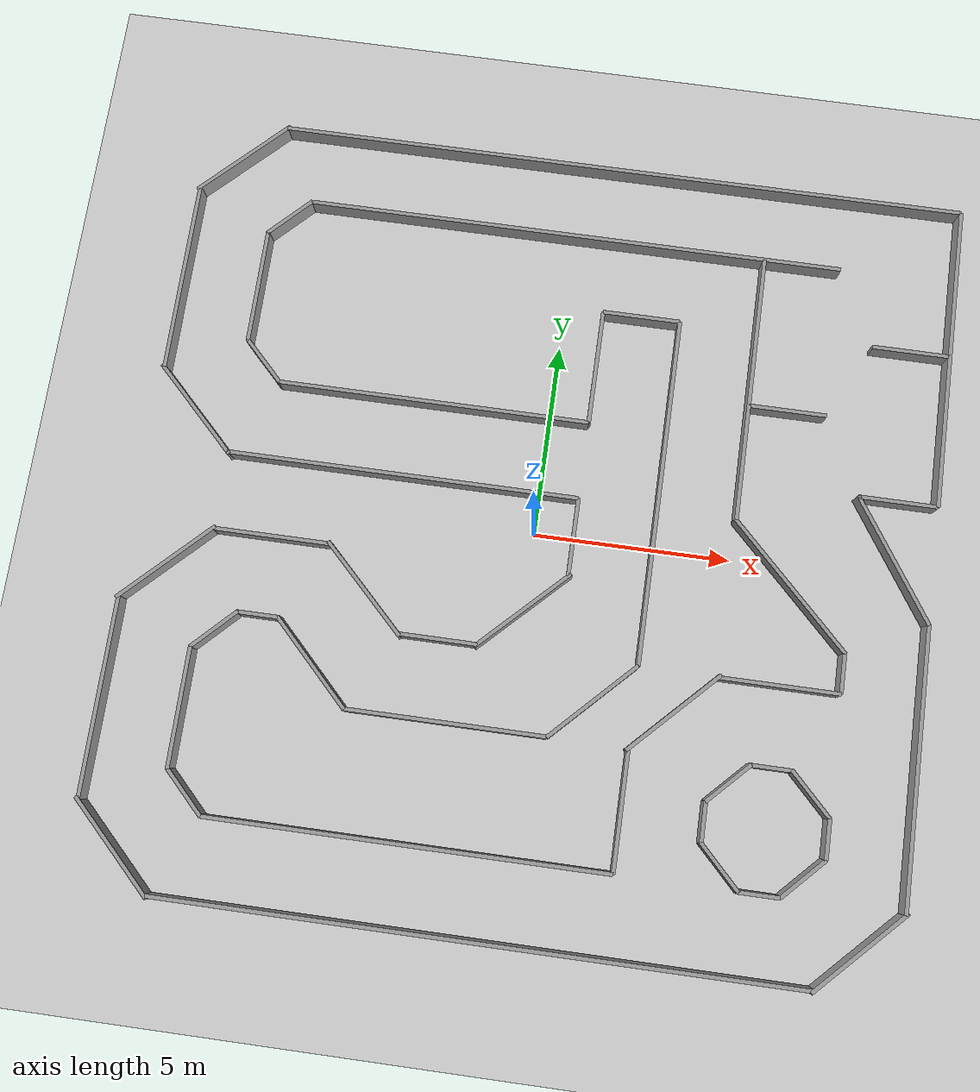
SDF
<sdf version="1.4">
 <world name="default">
  <light name="sun" type="directional">
   <pose>0 0 10 0 -0 0</pose>
   <diffuse>0.8 0.8 0.8 1</diffuse>
   <specular>0.2 0.2 0.2 1</specular>
   <attenuation>
    <range>1000</range>
    <constant>0.9</constant>
    <linear>0.01</linear>
    <quadratic>0.001</quadratic>
   </attenuation>
   <direction>-0.5 0.1 -0.9</direction>
  </light>
  <model name="ground_plane">
   <static>1</static>
   <link name="link">
    <collision name="collision">
     <geometry><plane><normal>0 0 1</normal><size>100 100</size></plane></geometry>
     <surface><friction><ode><mu>100000</mu><mu2>100000</mu2></ode></friction></surface>
    </collision>
    <visual name="visual">
     <cast_shadows>0</cast_shadows>
     <geometry><plane><normal>0 0 1</normal><size>100 100</size></plane></geometry>
     <material>
      <script><uri>file://media/materials/scripts/gazebo.material</uri><name>Gazebo/Grey</name></script>
     </material>
    </visual>
    <velocity_decay><linear>0</linear><angular>0</angular></velocity_decay>
   </link>
  </model>
  <physics type="ode">
   <max_step_size>0.01</max_step_size>
   <real_time_factor>1</real_time_factor>
   <real_time_update_rate>100</real_time_update_rate>
   <gravity>0 0 -9.8</gravity>
  </physics>
  <scene><ambient>0.4 0.4 0.4 1</ambient><background>0.7 0.7 0.7 1</background><shadows>1</shadows></scene>
  <model name="unit_box_1">
   <pose>-9 -2 0 0 0 0.78</pose>
   <link name="link">
    <inertial>
     <mass>1</mass>
     <inertia><ixx>0</ixx><ixy>0</ixy><ixz>0</ixz><iyy>0</iyy><iyz>0</iyz><izz>0</izz></inertia>
    </inertial>
    <collision name="collision"><geometry><box><size>3 0.1 1</size></box></geometry></collision>
    <visual name="visual">
     <geometry><box><size>3 0.1 1</size></box></geometry>
     <material>
      <script><uri>file://media/materials/scripts/gazebo.material</uri><name>Gazebo/Grey</name></script>
     </material>
    </visual>
    <velocity_decay><linear>0</linear><angular>0</angular></velocity_decay>
   </link>
   <static>1</static>
  </model>
  <model name="unit_box_2">
   <pose>-10 -5.5 0 0 0 0</pose>
   <link name="link">
    <inertial>
     <mass>1</mass>
     <inertia><ixx>0</ixx><ixy>0</ixy><ixz>0</ixz><iyy>0</iyy><iyz>0</iyz><izz>0</izz></inertia>
    </inertial>
    <collision name="collision"><geometry><box><size>0.1 5 1</size></box></geometry></collision>
    <visual name="visual">
     <geometry><box><size>0.1 5 1</size></box></geometry>
     <material>
      <script><uri>file://media/materials/scripts/gazebo.material</uri><name>Gazebo/Grey</name></script>
     </material>
    </visual>
    <velocity_decay><linear>0</linear><angular>0</angular></velocity_decay>
   </link>
   <static>1</static>
  </model>
  <model name="unit_box_3">
   <pose>-9 -9 0 0 0 -0.78</pose>
   <link name="link">
    <inertial>
     <mass>1</mass>
     <inertia><ixx>0</ixx><ixy>0</ixy><ixz>0</ixz><iyy>0</iyy><iyz>0</iyz><izz>0</izz></inertia>
    </inertial>
    <collision name="collision"><geometry><box><size>3 0.1 1</size></box></geometry></collision>
    <visual name="visual">
     <geometry><box><size>3 0.1 1</size></box></geometry>
     <material>
      <script><uri>file://media/materials/scripts/gazebo.material</uri><name>Gazebo/Grey</name></script>
     </material>
    </visual>
    <velocity_decay><linear>0</linear><angular>0</angular></velocity_decay>
   </link>
   <static>1</static>
  </model>
  <model name="unit_box_4">
   <pose>0 -10 0 0 0 0</pose>
   <link name="link">
    <inertial>
     <mass>1</mass>
     <inertia><ixx>0</ixx><ixy>0</ixy><ixz>0</ixz><iyy>0</iyy><iyz>0</iyz><izz>0</izz></inertia>
    </inertial>
    <collision name="collision"><geometry><box><size>16 0.1 1</size></box></geometry></collision>
    <visual name="visual">
     <geometry><box><size>16 0.1 1</size></box></geometry>
     <material>
      <script><uri>file://media/materials/scripts/gazebo.material</uri><name>Gazebo/Grey</name></script>
     </material>
    </visual>
    <velocity_decay><linear>0</linear><angular>0</angular></velocity_decay>
   </link>
   <static>1</static>
  </model>
  <model name="unit_box_5">
   <pose>-2 -8 0 0 0 0</pose>
   <link name="link">
    <inertial>
     <mass>1</mass>
     <inertia><ixx>0</ixx><ixy>0</ixy><ixz>0</ixz><iyy>0</iyy><iyz>0</iyz><izz>0</izz></inertia>
    </inertial>
    <collision name="collision"><geometry><box><size>10 0.1 1</size></box></geometry></collision>
    <visual name="visual">
     <geometry><box><size>10 0.1 1</size></box></geometry>
     <material>
      <script><uri>file://media/materials/scripts/gazebo.material</uri><name>Gazebo/Grey</name></script>
     </material>
    </visual>
    <velocity_decay><linear>0</linear><angular>0</angular></velocity_decay>
   </link>
   <static>1</static>
  </model>
  <model name="unit_box_6">
   <pose>9 -9 0 0 0 0.78</pose>
   <link name="link">
    <inertial>
     <mass>1</mass>
     <inertia><ixx>0</ixx><ixy>0</ixy><ixz>0</ixz><iyy>0</iyy><iyz>0</iyz><izz>0</izz></inertia>
    </inertial>
    <collision name="collision"><geometry><box><size>3 0.1 1</size></box></geometry></collision>
    <visual name="visual">
     <geometry><box><size>3 0.1 1</size></box></geometry>
     <material>
      <script><uri>file://media/materials/scripts/gazebo.material</uri><name>Gazebo/Grey</name></script>
     </material>
    </visual>
    <velocity_decay><linear>0</linear><angular>0</angular></velocity_decay>
   </link>
   <static>1</static>
  </model>
  <model name="unit_box_7">
   <pose>3 -6.5 0 0 0 0</pose>
   <link name="link">
    <inertial>
     <mass>1</mass>
     <inertia><ixx>0</ixx><ixy>0</ixy><ixz>0</ixz><iyy>0</iyy><iyz>0</iyz><izz>0</izz></inertia>
    </inertial>
    <collision name="collision"><geometry><box><size>0.1 3 1</size></box></geometry></collision>
    <visual name="visual">
     <geometry><box><size>0.1 3 1</size></box></geometry>
     <material>
      <script><uri>file://media/materials/scripts/gazebo.material</uri><name>Gazebo/Grey</name></script>
     </material>
    </visual>
    <velocity_decay><linear>0</linear><angular>0</angular></velocity_decay>
   </link>
   <static>1</static>
  </model>
  <model name="unit_box_8">
   <pose>5 -6.5 0 0 0 0</pose>
   <link name="link">
    <inertial>
     <mass>1</mass>
     <inertia><ixx>0</ixx><ixy>0</ixy><ixz>0</ixz><iyy>0</iyy><iyz>0</iyz><izz>0</izz></inertia>
    </inertial>
    <collision name="collision"><geometry><box><size>0.1 1 1</size></box></geometry></collision>
    <visual name="visual">
     <geometry><box><size>0.1 1 1</size></box></geometry>
     <material>
      <script><uri>file://media/materials/scripts/gazebo.material</uri><name>Gazebo/Grey</name></script>
     </material>
    </visual>
    <velocity_decay><linear>0</linear><angular>0</angular></velocity_decay>
   </link>
   <static>1</static>
  </model>
  <model name="unit_box_9">
   <pose>8 -6.5 0 0 0 0</pose>
   <link name="link">
    <inertial>
     <mass>1</mass>
     <inertia><ixx>0</ixx><ixy>0</ixy><ixz>0</ixz><iyy>0</iyy><iyz>0</iyz><izz>0</izz></inertia>
    </inertial>
    <collision name="collision"><geometry><box><size>0.1 1 1</size></box></geometry></collision>
    <visual name="visual">
     <geometry><box><size>0.1 1 1</size></box></geometry>
     <material>
      <script><uri>file://media/materials/scripts/gazebo.material</uri><name>Gazebo/Grey</name></script>
     </material>
    </visual>
    <velocity_decay><linear>0</linear><angular>0</angular></velocity_decay>
   </link>
   <static>1</static>
  </model>
  <model name="unit_box_10">
   <pose>7.5 -7.5 0 0 0 -0.78</pose>
   <link name="link">
    <inertial>
     <mass>1</mass>
     <inertia><ixx>0</ixx><ixy>0</ixy><ixz>0</ixz><iyy>0</iyy><iyz>0</iyz><izz>0</izz></inertia>
    </inertial>
    <collision name="collision"><geometry><box><size>0.1 1.45 1</size></box></geometry></collision>
    <visual name="visual">
     <geometry><box><size>0.1 1.45 1</size></box></geometry>
     <material>
      <script><uri>file://media/materials/scripts/gazebo.material</uri><name>Gazebo/Grey</name></script>
     </material>
    </visual>
    <velocity_decay><linear>0</linear><angular>0</angular></velocity_decay>
   </link>
   <static>1</static>
  </model>
  <model name="unit_box_11">
   <pose>6.5 -8 0 0 0 0</pose>
   <link name="link">
    <inertial>
     <mass>1</mass>
     <inertia><ixx>0</ixx><ixy>0</ixy><ixz>0</ixz><iyy>0</iyy><iyz>0</iyz><izz>0</izz></inertia>
    </inertial>
    <collision name="collision"><geometry><box><size>1 0.1 1</size></box></geometry></collision>
    <visual name="visual">
     <geometry><box><size>1 0.1 1</size></box></geometry>
     <material>
      <script><uri>file://media/materials/scripts/gazebo.material</uri><name>Gazebo/Grey</name></script>
     </material>
    </visual>
    <velocity_decay><linear>0</linear><angular>0</angular></velocity_decay>
   </link>
   <static>1</static>
  </model>
  <model name="unit_box_12">
   <pose>5.5 -7.5 0 0 0 0.78</pose>
   <link name="link">
    <inertial>
     <mass>1</mass>
     <inertia><ixx>0</ixx><ixy>0</ixy><ixz>0</ixz><iyy>0</iyy><iyz>0</iyz><izz>0</izz></inertia>
    </inertial>
    <collision name="collision"><geometry><box><size>0.1 1.45 1</size></box></geometry></collision>
    <visual name="visual">
     <geometry><box><size>0.1 1.45 1</size></box></geometry>
     <material>
      <script><uri>file://media/materials/scripts/gazebo.material</uri><name>Gazebo/Grey</name></script>
     </material>
    </visual>
    <velocity_decay><linear>0</linear><angular>0</angular></velocity_decay>
   </link>
   <static>1</static>
  </model>
  <model name="unit_box_13">
   <pose>5.5 -5.5 0 0 0 -0.78</pose>
   <link name="link">
    <inertial>
     <mass>1</mass>
     <inertia><ixx>0</ixx><ixy>0</ixy><ixz>0</ixz><iyy>0</iyy><iyz>0</iyz><izz>0</izz></inertia>
    </inertial>
    <collision name="collision"><geometry><box><size>0.1 1.45 1</size></box></geometry></collision>
    <visual name="visual">
     <geometry><box><size>0.1 1.45 1</size></box></geometry>
     <material>
      <script><uri>file://media/materials/scripts/gazebo.material</uri><name>Gazebo/Grey</name></script>
     </material>
    </visual>
    <velocity_decay><linear>0</linear><angular>0</angular></velocity_decay>
   </link>
   <static>1</static>
  </model>
  <model name="unit_box_14">
   <pose>7.5 -5.5 0 0 0 0.78</pose>
   <link name="link">
    <inertial>
     <mass>1</mass>
     <inertia><ixx>0</ixx><ixy>0</ixy><ixz>0</ixz><iyy>0</iyy><iyz>0</iyz><izz>0</izz></inertia>
    </inertial>
    <collision name="collision"><geometry><box><size>0.1 1.45 1</size></box></geometry></collision>
    <visual name="visual">
     <geometry><box><size>0.1 1.45 1</size></box></geometry>
     <material>
      <script><uri>file://media/materials/scripts/gazebo.material</uri><name>Gazebo/Grey</name></script>
     </material>
    </visual>
    <velocity_decay><linear>0</linear><angular>0</angular></velocity_decay>
   </link>
   <static>1</static>
  </model>
  <model name="unit_box_15">
   <pose>6.5 -5 0 0 0 0</pose>
   <link name="link">
    <inertial>
     <mass>1</mass>
     <inertia><ixx>0</ixx><ixy>0</ixy><ixz>0</ixz><iyy>0</iyy><iyz>0</iyz><izz>0</izz></inertia>
    </inertial>
    <collision name="collision"><geometry><box><size>1 0.1 1</size></box></geometry></collision>
    <visual name="visual">
     <geometry><box><size>1 0.1 1</size></box></geometry>
     <material>
      <script><uri>file://media/materials/scripts/gazebo.material</uri><name>Gazebo/Grey</name></script>
     </material>
    </visual>
    <velocity_decay><linear>0</linear><angular>0</angular></velocity_decay>
   </link>
   <static>1</static>
  </model>
  <model name="unit_box_16">
   <pose>4 -4 0 0 0 -0.78</pose>
   <link name="link">
    <inertial>
     <mass>1</mass>
     <inertia><ixx>0</ixx><ixy>0</ixy><ixz>0</ixz><iyy>0</iyy><iyz>0</iyz><izz>0</izz></inertia>
    </inertial>
    <collision name="collision"><geometry><box><size>0.1 3 1</size></box></geometry></collision>
    <visual name="visual">
     <geometry><box><size>0.1 3 1</size></box></geometry>
     <material>
      <script><uri>file://media/materials/scripts/gazebo.material</uri><name>Gazebo/Grey</name></script>
     </material>
    </visual>
    <velocity_decay><linear>0</linear><angular>0</angular></velocity_decay>
   </link>
   <static>1</static>
  </model>
  <model name="unit_box_17">
   <pose>10 -4.5 0 0 0 0</pose>
   <link name="link">
    <inertial>
     <mass>1</mass>
     <inertia><ixx>0</ixx><ixy>0</ixy><ixz>0</ixz><iyy>0</iyy><iyz>0</iyz><izz>0</izz></inertia>
    </inertial>
    <collision name="collision"><geometry><box><size>0.1 7 1</size></box></geometry></collision>
    <visual name="visual">
     <geometry><box><size>0.1 7 1</size></box></geometry>
     <material>
      <script><uri>file://media/materials/scripts/gazebo.material</uri><name>Gazebo/Grey</name></script>
     </material>
    </visual>
    <velocity_decay><linear>0</linear><angular>0</angular></velocity_decay>
   </link>
   <static>1</static>
  </model>
  <model name="unit_box_18">
   <pose>6.5 -3 0 0 0 0</pose>
   <link name="link">
    <inertial>
     <mass>1</mass>
     <inertia><ixx>0</ixx><ixy>0</ixy><ixz>0</ixz><iyy>0</iyy><iyz>0</iyz><izz>0</izz></inertia>
    </inertial>
    <collision name="collision"><geometry><box><size>3 0.1 1</size></box></geometry></collision>
    <visual name="visual">
     <geometry><box><size>3 0.1 1</size></box></geometry>
     <material>
      <script><uri>file://media/materials/scripts/gazebo.material</uri><name>Gazebo/Grey</name></script>
     </material>
    </visual>
    <velocity_decay><linear>0</linear><angular>0</angular></velocity_decay>
   </link>
   <static>1</static>
  </model>
  <model name="unit_box_19">
   <pose>1 10 0 0 0 0</pose>
   <link name="link">
    <inertial>
     <mass>1</mass>
     <inertia><ixx>0</ixx><ixy>0</ixy><ixz>0</ixz><iyy>0</iyy><iyz>0</iyz><izz>0</izz></inertia>
    </inertial>
    <collision name="collision"><geometry><box><size>18 0.1 1</size></box></geometry></collision>
    <visual name="visual">
     <geometry><box><size>18 0.1 1</size></box></geometry>
     <material>
      <script><uri>file://media/materials/scripts/gazebo.material</uri><name>Gazebo/Grey</name></script>
     </material>
    </visual>
    <velocity_decay><linear>0</linear><angular>0</angular></velocity_decay>
   </link>
   <static>1</static>
  </model>
  <model name="unit_box_20">
   <pose>10 6 0 0 0 0</pose>
   <link name="link">
    <inertial>
     <mass>1</mass>
     <inertia><ixx>0</ixx><ixy>0</ixy><ixz>0</ixz><iyy>0</iyy><iyz>0</iyz><izz>0</izz></inertia>
    </inertial>
    <collision name="collision"><geometry><box><size>0.1 8 1</size></box></geometry></collision>
    <visual name="visual">
     <geometry><box><size>0.1 8 1</size></box></geometry>
     <material>
      <script><uri>file://media/materials/scripts/gazebo.material</uri><name>Gazebo/Grey</name></script>
     </material>
    </visual>
    <velocity_decay><linear>0</linear><angular>0</angular></velocity_decay>
   </link>
   <static>1</static>
  </model>
  <model name="unit_box_21">
   <pose>5 4.5 0 0 0 0</pose>
   <link name="link">
    <inertial>
     <mass>1</mass>
     <inertia><ixx>0</ixx><ixy>0</ixy><ixz>0</ixz><iyy>0</iyy><iyz>0</iyz><izz>0</izz></inertia>
    </inertial>
    <collision name="collision"><geometry><box><size>0.1 7 1</size></box></geometry></collision>
    <visual name="visual">
     <geometry><box><size>0.1 7 1</size></box></geometry>
     <material>
      <script><uri>file://media/materials/scripts/gazebo.material</uri><name>Gazebo/Grey</name></script>
     </material>
    </visual>
    <velocity_decay><linear>0</linear><angular>0</angular></velocity_decay>
   </link>
   <static>1</static>
  </model>
  <model name="unit_box_22">
   <pose>0 8 0 0 0 0</pose>
   <link name="link">
    <inertial>
     <mass>1</mass>
     <inertia><ixx>0</ixx><ixy>0</ixy><ixz>0</ixz><iyy>0</iyy><iyz>0</iyz><izz>0</izz></inertia>
    </inertial>
    <collision name="collision"><geometry><box><size>14 0.1 1</size></box></geometry></collision>
    <visual name="visual">
     <geometry><box><size>14 0.1 1</size></box></geometry>
     <material>
      <script><uri>file://media/materials/scripts/gazebo.material</uri><name>Gazebo/Grey</name></script>
     </material>
    </visual>
    <velocity_decay><linear>0</linear><angular>0</angular></velocity_decay>
   </link>
   <static>1</static>
  </model>
  <model name="unit_box_23">
   <pose>9 2 0 0 0 0</pose>
   <link name="link">
    <inertial>
     <mass>1</mass>
     <inertia><ixx>0</ixx><ixy>0</ixy><ixz>0</ixz><iyy>0</iyy><iyz>0</iyz><izz>0</izz></inertia>
    </inertial>
    <collision name="collision"><geometry><box><size>2 0.1 1</size></box></geometry></collision>
    <visual name="visual">
     <geometry><box><size>2 0.1 1</size></box></geometry>
     <material>
      <script><uri>file://media/materials/scripts/gazebo.material</uri><name>Gazebo/Grey</name></script>
     </material>
    </visual>
    <velocity_decay><linear>0</linear><angular>0</angular></velocity_decay>
   </link>
   <static>1</static>
  </model>
  <model name="unit_box_24">
   <pose>9 6 0 0 0 0</pose>
   <link name="link">
    <inertial>
     <mass>1</mass>
     <inertia><ixx>0</ixx><ixy>0</ixy><ixz>0</ixz><iyy>0</iyy><iyz>0</iyz><izz>0</izz></inertia>
    </inertial>
    <collision name="collision"><geometry><box><size>2 0.1 1</size></box></geometry></collision>
    <visual name="visual">
     <geometry><box><size>2 0.1 1</size></box></geometry>
     <material>
      <script><uri>file://media/materials/scripts/gazebo.material</uri><name>Gazebo/Grey</name></script>
     </material>
    </visual>
    <velocity_decay><linear>0</linear><angular>0</angular></velocity_decay>
   </link>
   <static>1</static>
  </model>
  <model name="unit_box_25">
   <pose>6 4 0 0 0 0</pose>
   <link name="link">
    <inertial>
     <mass>1</mass>
     <inertia><ixx>0</ixx><ixy>0</ixy><ixz>0</ixz><iyy>0</iyy><iyz>0</iyz><izz>0</izz></inertia>
    </inertial>
    <collision name="collision"><geometry><box><size>2 0.1 1</size></box></geometry></collision>
    <visual name="visual">
     <geometry><box><size>2 0.1 1</size></box></geometry>
     <material>
      <script><uri>file://media/materials/scripts/gazebo.material</uri><name>Gazebo/Grey</name></script>
     </material>
    </visual>
    <velocity_decay><linear>0</linear><angular>0</angular></velocity_decay>
   </link>
   <static>1</static>
  </model>
  <model name="unit_box_26">
   <pose>9 0.5 0 0 0 -0.984</pose>
   <link name="link">
    <inertial>
     <mass>1</mass>
     <inertia><ixx>0</ixx><ixy>0</ixy><ixz>0</ixz><iyy>0</iyy><iyz>0</iyz><izz>0</izz></inertia>
    </inertial>
    <collision name="collision"><geometry><box><size>3.65 0.1 1</size></box></geometry></collision>
    <visual name="visual">
     <geometry><box><size>3.65 0.1 1</size></box></geometry>
     <material>
      <script><uri>file://media/materials/scripts/gazebo.material</uri><name>Gazebo/Grey</name></script>
     </material>
    </visual>
    <velocity_decay><linear>0</linear><angular>0</angular></velocity_decay>
   </link>
   <static>1</static>
  </model>
  <model name="unit_box_27">
   <pose>6.5 -0.5 0 0 0 -0.78</pose>
   <link name="link">
    <inertial>
     <mass>1</mass>
     <inertia><ixx>0</ixx><ixy>0</ixy><ixz>0</ixz><iyy>0</iyy><iyz>0</iyz><izz>0</izz></inertia>
    </inertial>
    <collision name="collision"><geometry><box><size>4.3 0.1 1</size></box></geometry></collision>
    <visual name="visual">
     <geometry><box><size>4.3 0.1 1</size></box></geometry>
     <material>
      <script><uri>file://media/materials/scripts/gazebo.material</uri><name>Gazebo/Grey</name></script>
     </material>
    </visual>
    <velocity_decay><linear>0</linear><angular>0</angular></velocity_decay>
   </link>
   <static>1</static>
  </model>
  <model name="unit_box_28">
   <pose>8 -2.5 0 0 0 0</pose>
   <link name="link">
    <inertial>
     <mass>1</mass>
     <inertia><ixx>0</ixx><ixy>0</ixy><ixz>0</ixz><iyy>0</iyy><iyz>0</iyz><izz>0</izz></inertia>
    </inertial>
    <collision name="collision"><geometry><box><size>0.1 1 1</size></box></geometry></collision>
    <visual name="visual">
     <geometry><box><size>0.1 1 1</size></box></geometry>
     <material>
      <script><uri>file://media/materials/scripts/gazebo.material</uri><name>Gazebo/Grey</name></script>
     </material>
    </visual>
    <velocity_decay><linear>0</linear><angular>0</angular></velocity_decay>
   </link>
   <static>1</static>
  </model>
  <model name="unit_box_29">
   <pose>-9 9 0 0 0 0.78</pose>
   <link name="link">
    <inertial>
     <mass>1</mass>
     <inertia><ixx>0</ixx><ixy>0</ixy><ixz>0</ixz><iyy>0</iyy><iyz>0</iyz><izz>0</izz></inertia>
    </inertial>
    <collision name="collision"><geometry><box><size>3 0.1 1</size></box></geometry></collision>
    <visual name="visual">
     <geometry><box><size>3 0.1 1</size></box></geometry>
     <material>
      <script><uri>file://media/materials/scripts/gazebo.material</uri><name>Gazebo/Grey</name></script>
     </material>
    </visual>
    <velocity_decay><linear>0</linear><angular>0</angular></velocity_decay>
   </link>
   <static>1</static>
  </model>
  <model name="unit_box_30">
   <pose>-10 5.5 0 0 0 0</pose>
   <link name="link">
    <inertial>
     <mass>1</mass>
     <inertia><ixx>0</ixx><ixy>0</ixy><ixz>0</ixz><iyy>0</iyy><iyz>0</iyz><izz>0</izz></inertia>
    </inertial>
    <collision name="collision"><geometry><box><size>0.1 5 1</size></box></geometry></collision>
    <visual name="visual">
     <geometry><box><size>0.1 5 1</size></box></geometry>
     <material>
      <script><uri>file://media/materials/scripts/gazebo.material</uri><name>Gazebo/Grey</name></script>
     </material>
    </visual>
    <velocity_decay><linear>0</linear><angular>0</angular></velocity_decay>
   </link>
   <static>1</static>
  </model>
  <model name="unit_box_31">
   <pose>-9 2 0 0 0 -0.78</pose>
   <link name="link">
    <inertial>
     <mass>1</mass>
     <inertia><ixx>0</ixx><ixy>0</ixy><ixz>0</ixz><iyy>0</iyy><iyz>0</iyz><izz>0</izz></inertia>
    </inertial>
    <collision name="collision"><geometry><box><size>3 0.1 1</size></box></geometry></collision>
    <visual name="visual">
     <geometry><box><size>3 0.1 1</size></box></geometry>
     <material>
      <script><uri>file://media/materials/scripts/gazebo.material</uri><name>Gazebo/Grey</name></script>
     </material>
    </visual>
    <velocity_decay><linear>0</linear><angular>0</angular></velocity_decay>
   </link>
   <static>1</static>
  </model>
  <model name="unit_box_32">
   <pose>-3 3 0 0 0 0</pose>
   <link name="link">
    <inertial>
     <mass>1</mass>
     <inertia><ixx>0</ixx><ixy>0</ixy><ixz>0</ixz><iyy>0</iyy><iyz>0</iyz><izz>0</izz></inertia>
    </inertial>
    <collision name="collision"><geometry><box><size>8 0.1 1</size></box></geometry></collision>
    <visual name="visual">
     <geometry><box><size>8 0.1 1</size></box></geometry>
     <material>
      <script><uri>file://media/materials/scripts/gazebo.material</uri><name>Gazebo/Grey</name></script>
     </material>
    </visual>
    <velocity_decay><linear>0</linear><angular>0</angular></velocity_decay>
   </link>
   <static>1</static>
  </model>
  <model name="unit_box_33">
   <pose>-8 5.5 0 0 0 0</pose>
   <link name="link">
    <inertial>
     <mass>1</mass>
     <inertia><ixx>0</ixx><ixy>0</ixy><ixz>0</ixz><iyy>0</iyy><iyz>0</iyz><izz>0</izz></inertia>
    </inertial>
    <collision name="collision"><geometry><box><size>0.1 3 1</size></box></geometry></collision>
    <visual name="visual">
     <geometry><box><size>0.1 3 1</size></box></geometry>
     <material>
      <script><uri>file://media/materials/scripts/gazebo.material</uri><name>Gazebo/Grey</name></script>
     </material>
    </visual>
    <velocity_decay><linear>0</linear><angular>0</angular></velocity_decay>
   </link>
   <static>1</static>
  </model>
  <model name="unit_box_34">
   <pose>-7.5 3.5 0 0 0 0.78</pose>
   <link name="link">
    <inertial>
     <mass>1</mass>
     <inertia><ixx>0</ixx><ixy>0</ixy><ixz>0</ixz><iyy>0</iyy><iyz>0</iyz><izz>0</izz></inertia>
    </inertial>
    <collision name="collision"><geometry><box><size>0.1 1.45 1</size></box></geometry></collision>
    <visual name="visual">
     <geometry><box><size>0.1 1.45 1</size></box></geometry>
     <material>
      <script><uri>file://media/materials/scripts/gazebo.material</uri><name>Gazebo/Grey</name></script>
     </material>
    </visual>
    <velocity_decay><linear>0</linear><angular>0</angular></velocity_decay>
   </link>
   <static>1</static>
  </model>
  <model name="unit_box_35">
   <pose>-7.5 7.5 0 0 0 -0.78</pose>
   <link name="link">
    <inertial>
     <mass>1</mass>
     <inertia><ixx>0</ixx><ixy>0</ixy><ixz>0</ixz><iyy>0</iyy><iyz>0</iyz><izz>0</izz></inertia>
    </inertial>
    <collision name="collision"><geometry><box><size>0.1 1.45 1</size></box></geometry></collision>
    <visual name="visual">
     <geometry><box><size>0.1 1.45 1</size></box></geometry>
     <material>
      <script><uri>file://media/materials/scripts/gazebo.material</uri><name>Gazebo/Grey</name></script>
     </material>
    </visual>
    <velocity_decay><linear>0</linear><angular>0</angular></velocity_decay>
   </link>
   <static>1</static>
  </model>
  <model name="unit_box_36">
   <pose>1 4.5 0 0 0 0</pose>
   <link name="link">
    <inertial>
     <mass>1</mass>
     <inertia><ixx>0</ixx><ixy>0</ixy><ixz>0</ixz><iyy>0</iyy><iyz>0</iyz><izz>0</izz></inertia>
    </inertial>
    <collision name="collision"><geometry><box><size>0.1 3 1</size></box></geometry></collision>
    <visual name="visual">
     <geometry><box><size>0.1 3 1</size></box></geometry>
     <material>
      <script><uri>file://media/materials/scripts/gazebo.material</uri><name>Gazebo/Grey</name></script>
     </material>
    </visual>
    <velocity_decay><linear>0</linear><angular>0</angular></velocity_decay>
   </link>
   <static>1</static>
  </model>
  <model name="unit_box_37">
   <pose>3 1.5 0 0 0 0</pose>
   <link name="link">
    <inertial>
     <mass>1</mass>
     <inertia><ixx>0</ixx><ixy>0</ixy><ixz>0</ixz><iyy>0</iyy><iyz>0</iyz><izz>0</izz></inertia>
    </inertial>
    <collision name="collision"><geometry><box><size>0.1 9 1</size></box></geometry></collision>
    <visual name="visual">
     <geometry><box><size>0.1 9 1</size></box></geometry>
     <material>
      <script><uri>file://media/materials/scripts/gazebo.material</uri><name>Gazebo/Grey</name></script>
     </material>
    </visual>
    <velocity_decay><linear>0</linear><angular>0</angular></velocity_decay>
   </link>
   <static>1</static>
  </model>
  <model name="unit_box_38">
   <pose>-3.5 1 0 0 0 0</pose>
   <link name="link">
    <inertial>
     <mass>1</mass>
     <inertia><ixx>0</ixx><ixy>0</ixy><ixz>0</ixz><iyy>0</iyy><iyz>0</iyz><izz>0</izz></inertia>
    </inertial>
    <collision name="collision"><geometry><box><size>9 0.1 1</size></box></geometry></collision>
    <visual name="visual">
     <geometry><box><size>9 0.1 1</size></box></geometry>
     <material>
      <script><uri>file://media/materials/scripts/gazebo.material</uri><name>Gazebo/Grey</name></script>
     </material>
    </visual>
    <velocity_decay><linear>0</linear><angular>0</angular></velocity_decay>
   </link>
   <static>1</static>
  </model>
  <model name="unit_box_39">
   <pose>-8 -5.5 0 0 0 0</pose>
   <link name="link">
    <inertial>
     <mass>1</mass>
     <inertia><ixx>0</ixx><ixy>0</ixy><ixz>0</ixz><iyy>0</iyy><iyz>0</iyz><izz>0</izz></inertia>
    </inertial>
    <collision name="collision"><geometry><box><size>0.1 3 1</size></box></geometry></collision>
    <visual name="visual">
     <geometry><box><size>0.1 3 1</size></box></geometry>
     <material>
      <script><uri>file://media/materials/scripts/gazebo.material</uri><name>Gazebo/Grey</name></script>
     </material>
    </visual>
    <velocity_decay><linear>0</linear><angular>0</angular></velocity_decay>
   </link>
   <static>1</static>
  </model>
  <model name="unit_box_40">
   <pose>-7.5 -7.5 0 0 0 0.78</pose>
   <link name="link">
    <inertial>
     <mass>1</mass>
     <inertia><ixx>0</ixx><ixy>0</ixy><ixz>0</ixz><iyy>0</iyy><iyz>0</iyz><izz>0</izz></inertia>
    </inertial>
    <collision name="collision"><geometry><box><size>0.1 1.45 1</size></box></geometry></collision>
    <visual name="visual">
     <geometry><box><size>0.1 1.45 1</size></box></geometry>
     <material>
      <script><uri>file://media/materials/scripts/gazebo.material</uri><name>Gazebo/Grey</name></script>
     </material>
    </visual>
    <velocity_decay><linear>0</linear><angular>0</angular></velocity_decay>
   </link>
   <static>1</static>
  </model>
  <model name="unit_box_41">
   <pose>-7.5 -3.5 0 0 0 -0.78</pose>
   <link name="link">
    <inertial>
     <mass>1</mass>
     <inertia><ixx>0</ixx><ixy>0</ixy><ixz>0</ixz><iyy>0</iyy><iyz>0</iyz><izz>0</izz></inertia>
    </inertial>
    <collision name="collision"><geometry><box><size>0.1 1.45 1</size></box></geometry></collision>
    <visual name="visual">
     <geometry><box><size>0.1 1.45 1</size></box></geometry>
     <material>
      <script><uri>file://media/materials/scripts/gazebo.material</uri><name>Gazebo/Grey</name></script>
     </material>
    </visual>
    <velocity_decay><linear>0</linear><angular>0</angular></velocity_decay>
   </link>
   <static>1</static>
  </model>
  <model name="unit_box_42">
   <pose>-6.5 -1 0 0 0 0</pose>
   <link name="link">
    <inertial>
     <mass>1</mass>
     <inertia><ixx>0</ixx><ixy>0</ixy><ixz>0</ixz><iyy>0</iyy><iyz>0</iyz><izz>0</izz></inertia>
    </inertial>
    <collision name="collision"><geometry><box><size>3 0.1 1</size></box></geometry></collision>
    <visual name="visual">
     <geometry><box><size>3 0.1 1</size></box></geometry>
     <material>
      <script><uri>file://media/materials/scripts/gazebo.material</uri><name>Gazebo/Grey</name></script>
     </material>
    </visual>
    <velocity_decay><linear>0</linear><angular>0</angular></velocity_decay>
   </link>
   <static>1</static>
  </model>
  <model name="unit_box_43">
   <pose>-6.5 -3 0 0 0 0</pose>
   <link name="link">
    <inertial>
     <mass>1</mass>
     <inertia><ixx>0</ixx><ixy>0</ixy><ixz>0</ixz><iyy>0</iyy><iyz>0</iyz><izz>0</izz></inertia>
    </inertial>
    <collision name="collision"><geometry><box><size>1 0.1 1</size></box></geometry></collision>
    <visual name="visual">
     <geometry><box><size>1 0.1 1</size></box></geometry>
     <material>
      <script><uri>file://media/materials/scripts/gazebo.material</uri><name>Gazebo/Grey</name></script>
     </material>
    </visual>
    <velocity_decay><linear>0</linear><angular>0</angular></velocity_decay>
   </link>
   <static>1</static>
  </model>
  <model name="unit_box_44">
   <pose>-5 -4 0 0 0 0.78</pose>
   <link name="link">
    <inertial>
     <mass>1</mass>
     <inertia><ixx>0</ixx><ixy>0</ixy><ixz>0</ixz><iyy>0</iyy><iyz>0</iyz><izz>0</izz></inertia>
    </inertial>
    <collision name="collision"><geometry><box><size>0.1 2.85 1</size></box></geometry></collision>
    <visual name="visual">
     <geometry><box><size>0.1 2.85 1</size></box></geometry>
     <material>
      <script><uri>file://media/materials/scripts/gazebo.material</uri><name>Gazebo/Grey</name></script>
     </material>
    </visual>
    <velocity_decay><linear>0</linear><angular>0</angular></velocity_decay>
   </link>
   <static>1</static>
  </model>
  <model name="unit_box_45">
   <pose>-4 -2 0 0 0 -0.78</pose>
   <link name="link">
    <inertial>
     <mass>1</mass>
     <inertia><ixx>0</ixx><ixy>0</ixy><ixz>0</ixz><iyy>0</iyy><iyz>0</iyz><izz>0</izz></inertia>
    </inertial>
    <collision name="collision"><geometry><box><size>3 0.1 1</size></box></geometry></collision>
    <visual name="visual">
     <geometry><box><size>3 0.1 1</size></box></geometry>
     <material>
      <script><uri>file://media/materials/scripts/gazebo.material</uri><name>Gazebo/Grey</name></script>
     </material>
    </visual>
    <velocity_decay><linear>0</linear><angular>0</angular></velocity_decay>
   </link>
   <static>1</static>
  </model>
  <model name="unit_box_46">
   <pose>-1.5 -5 0 0 0 0</pose>
   <link name="link">
    <inertial>
     <mass>1</mass>
     <inertia><ixx>0</ixx><ixy>0</ixy><ixz>0</ixz><iyy>0</iyy><iyz>0</iyz><izz>0</izz></inertia>
    </inertial>
    <collision name="collision"><geometry><box><size>5 0.1 1</size></box></geometry></collision>
    <visual name="visual">
     <geometry><box><size>5 0.1 1</size></box></geometry>
     <material>
      <script><uri>file://media/materials/scripts/gazebo.material</uri><name>Gazebo/Grey</name></script>
     </material>
    </visual>
    <velocity_decay><linear>0</linear><angular>0</angular></velocity_decay>
   </link>
   <static>1</static>
  </model>
  <model name="unit_box_47">
   <pose>2 -4 0 0 0 -0.78</pose>
   <link name="link">
    <inertial>
     <mass>1</mass>
     <inertia><ixx>0</ixx><ixy>0</ixy><ixz>0</ixz><iyy>0</iyy><iyz>0</iyz><izz>0</izz></inertia>
    </inertial>
    <collision name="collision"><geometry><box><size>0.1 2.85 1</size></box></geometry></collision>
    <visual name="visual">
     <geometry><box><size>0.1 2.85 1</size></box></geometry>
     <material>
      <script><uri>file://media/materials/scripts/gazebo.material</uri><name>Gazebo/Grey</name></script>
     </material>
    </visual>
    <velocity_decay><linear>0</linear><angular>0</angular></velocity_decay>
   </link>
   <static>1</static>
  </model>
  <model name="unit_box_48">
   <pose>-2 -3 0 0 0 0</pose>
   <link name="link">
    <inertial>
     <mass>1</mass>
     <inertia><ixx>0</ixx><ixy>0</ixy><ixz>0</ixz><iyy>0</iyy><iyz>0</iyz><izz>0</izz></inertia>
    </inertial>
    <collision name="collision"><geometry><box><size>2 0.1 1</size></box></geometry></collision>
    <visual name="visual">
     <geometry><box><size>2 0.1 1</size></box></geometry>
     <material>
      <script><uri>file://media/materials/scripts/gazebo.material</uri><name>Gazebo/Grey</name></script>
     </material>
    </visual>
    <velocity_decay><linear>0</linear><angular>0</angular></velocity_decay>
   </link>
   <static>1</static>
  </model>
  <model name="unit_box_49">
   <pose>0 -2 0 0 0 0.78</pose>
   <link name="link">
    <inertial>
     <mass>1</mass>
     <inertia><ixx>0</ixx><ixy>0</ixy><ixz>0</ixz><iyy>0</iyy><iyz>0</iyz><izz>0</izz></inertia>
    </inertial>
    <collision name="collision"><geometry><box><size>3 0.1 1</size></box></geometry></collision>
    <visual name="visual">
     <geometry><box><size>3 0.1 1</size></box></geometry>
     <material>
      <script><uri>file://media/materials/scripts/gazebo.material</uri><name>Gazebo/Grey</name></script>
     </material>
    </visual>
    <velocity_decay><linear>0</linear><angular>0</angular></velocity_decay>
   </link>
   <static>1</static>
  </model>
  <model name="unit_box_50">
   <pose>1 0 0 0 0 0</pose>
   <link name="link">
    <inertial>
     <mass>1</mass>
     <inertia><ixx>0</ixx><ixy>0</ixy><ixz>0</ixz><iyy>0</iyy><iyz>0</iyz><izz>0</izz></inertia>
    </inertial>
    <collision name="collision"><geometry><box><size>0.1 2 1</size></box></geometry></collision>
    <visual name="visual">
     <geometry><box><size>0.1 2 1</size></box></geometry>
     <material>
      <script><uri>file://media/materials/scripts/gazebo.material</uri><name>Gazebo/Grey</name></script>
     </material>
    </visual>
    <velocity_decay><linear>0</linear><angular>0</angular></velocity_decay>
   </link>
   <static>1</static>
  </model>
  <model name="unit_box_51">
   <pose>2 6 0 0 0 0</pose>
   <link name="link">
    <inertial>
     <mass>1</mass>
     <inertia><ixx>0</ixx><ixy>0</ixy><ixz>0</ixz><iyy>0</iyy><iyz>0</iyz><izz>0</izz></inertia>
    </inertial>
    <collision name="collision"><geometry><box><size>2 0.1 1</size></box></geometry></collision>
    <visual name="visual">
     <geometry><box><size>2 0.1 1</size></box></geometry>
     <material>
      <script><uri>file://media/materials/scripts/gazebo.material</uri><name>Gazebo/Grey</name></script>
     </material>
    </visual>
    <velocity_decay><linear>0</linear><angular>0</angular></velocity_decay>
   </link>
   <static>1</static>
  </model>
 </world>
</sdf>
